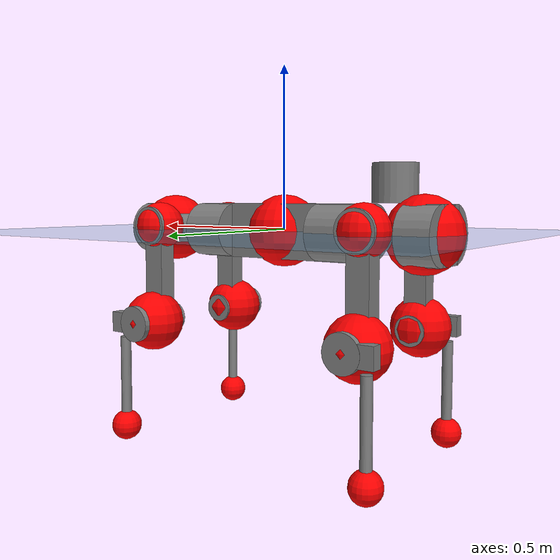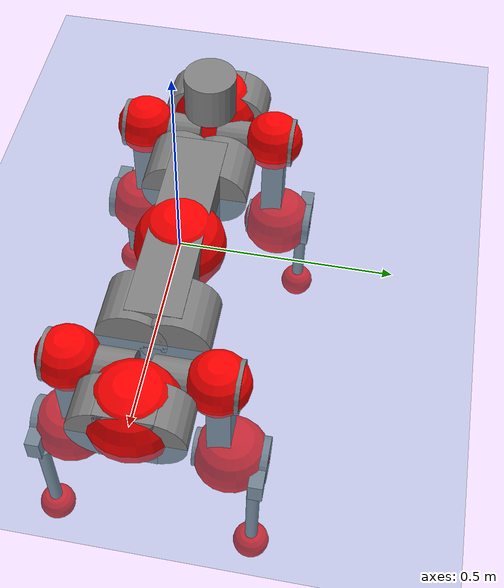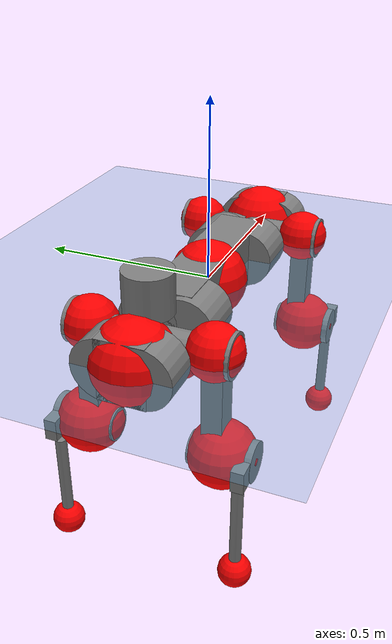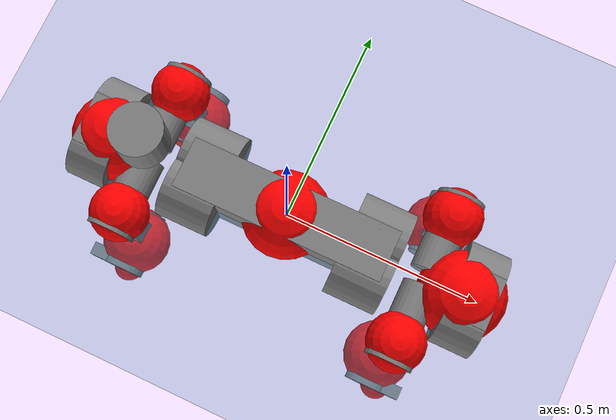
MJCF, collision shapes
<mujoco model="anymal_c">
  <compiler angle="radian" assetdir="assets" balanceinertia="true" inertiafromgeom="false"/>

  <option timestep="0.005" density="1.2" viscosity="2e-05"/>

  <size nkey="1"/>

  <visual>
    <quality shadowsize="8192"/>
    <map shadowclip="0.5"/>
  </visual>

  <default>
    <default class="/">
      <material specular="0" shininess="0.25"/>
      <geom contype="0" conaffinity="0" group="1" solref="-1000 -80"/>
      <site size="0.01 0.005 0.005" group="5"/>
      <general forcelimited="true" forcerange="-80 80" biastype="affine" gainprm="80" biasprm="0 -80 -2"/>
      <default class="anymal_c">
        <joint armature="0.01" damping="0.01" frictionloss="0.1"/>
        <default class="visual">
          <geom type="mesh" group="2"/>
          <default class="visual_zflip"/>
        </default>
        <default class="collision">
          <geom type="cylinder" group="3"/>
          <default class="foot">
            <geom size="0.03 0 0" type="sphere" condim="6" priority="1" friction="0.8 0.02 0.01" solimp="0.015 1 0.03"/>
          </default>
        </default>
      </default>
      <default class="reward_collision_sphere">
        <geom group="5" rgba="1 0 0 1"/>
      </default>
    </default>
  </default>

  <asset>
    <texture type="skybox" colorspace="auto" name="//unnamed_texture_0" builtin="gradient" rgb1="0.95 0.95 0.95" rgb2="0.95 0.95 0.95" width="100" height="600"/>
    <texture type="2d" colorspace="auto" name="texplane" builtin="checker" rgb1="0.345 0.575 0.748" rgb2="0.345 0.575 0.748" markrgb="1 1 1" width="512" height="512"/>
    <texture type="2d" colorspace="linear" name="base" file="base.png"/>
    <texture type="2d" colorspace="linear" name="top_shell" file="top_shell.png"/>
    <texture type="2d" colorspace="linear" name="bottom_shell" file="bottom_shell.png"/>
    <texture type="2d" colorspace="linear" name="remote" file="remote.png"/>
    <texture type="2d" colorspace="linear" name="hatch" file="hatch.png"/>
    <texture type="2d" colorspace="linear" name="handle" file="handle.png"/>
    <texture type="2d" colorspace="linear" name="face" file="face.png"/>
    <texture type="2d" colorspace="linear" name="battery" file="battery.png"/>
    <texture type="2d" colorspace="linear" name="lidar_cage" file="lidar_cage.png"/>
    <texture type="2d" colorspace="linear" name="depth_camera" file="depth_camera.png"/>
    <texture type="2d" colorspace="linear" name="wide_angle_camera" file="wide_angle_camera.png"/>
    <texture type="2d" colorspace="linear" name="lidar" file="lidar.png"/>
    <texture type="2d" colorspace="linear" name="drive" file="drive.png"/>
    <texture type="2d" colorspace="linear" name="hip_l" file="hip_l.png"/>
    <texture type="2d" colorspace="linear" name="shank_l" file="shank_l.png"/>
    <texture type="2d" colorspace="linear" name="foot" file="foot.png"/>
    <texture type="2d" colorspace="linear" name="thigh" file="thigh.png"/>
    <texture type="2d" colorspace="linear" name="shank_r" file="shank_r.png"/>
    <texture type="2d" colorspace="linear" name="hip_r" file="hip_r.png"/>
    <material name="MatPlane" class="/" texture="texplane" texuniform="true" texrepeat="2 2" specular="0.9" shininess="0.5"/>
    <material name="black_plastic" class="/" rgba="0.007 0.007 0.007 1"/>
    <material name="green" class="/" rgba="0.052 0.178 0.033 1"/>
    <material name="red" class="/" rgba="0.178 0.006 0.005 1"/>
    <material name="yellow" class="/" rgba="0.178 0.119 0.006 1"/>
    <material name="lwl" class="/" rgba="0.8 0.8 0.8 1"/>
    <material name="base" class="/" texture="base"/>
    <material name="top_shell" class="/" texture="top_shell"/>
    <material name="bottom_shell" class="/" texture="bottom_shell"/>
    <material name="hip_l" class="/" texture="hip_l"/>
    <material name="thigh" class="/" texture="thigh"/>
    <material name="shank_l" class="/" texture="shank_l"/>
    <material name="foot" class="/" texture="foot"/>
    <material name="hip_r" class="/" texture="hip_r"/>
    <material name="shank" class="/" texture="shank_r"/>
    <material name="hatch" class="/" texture="hatch"/>
    <material name="remote" class="/" texture="remote"/>
    <material name="handle" class="/" texture="handle"/>
    <material name="face" class="/" texture="face"/>
    <material name="depth_camera" class="/" texture="depth_camera"/>
    <material name="wide_angle_camera" class="/" texture="wide_angle_camera"/>
    <material name="battery" class="/" texture="battery"/>
    <material name="lidar_cage" class="/" texture="lidar_cage"/>
    <material name="lidar" class="/" texture="lidar"/>
    <material name="drive" class="/" texture="drive"/>
    <mesh name="base_0" class="/" file="base_0.obj"/>
    <mesh name="base_1" class="/" file="base_1.obj"/>
    <mesh name="base_2" class="/" file="base_2.obj"/>
    <mesh name="base_3" class="/" file="base_3.obj"/>
    <mesh name="base_4" class="/" file="base_4.obj"/>
    <mesh name="base_5" class="/" file="base_5.obj"/>
    <mesh name="top_shell" class="/" file="top_shell.obj"/>
    <mesh name="bottom_shell" class="/" file="bottom_shell.obj"/>
    <mesh name="remote" class="/" file="remote.obj"/>
    <mesh name="handle" class="/" file="handle.obj"/>
    <mesh name="face" class="/" file="face.obj"/>
    <mesh name="wide_angle_camera" class="/" file="wide_angle_camera.obj"/>
    <mesh name="depth_camera" class="/" file="depth_camera.obj"/>
    <mesh name="battery" class="/" file="battery.obj"/>
    <mesh name="lidar_cage" class="/" file="lidar_cage.obj"/>
    <mesh name="lidar" class="/" file="lidar.obj"/>
    <mesh name="drive" class="/" file="drive.obj"/>
    <mesh name="hip_l" class="/" file="hip_l.obj"/>
    <mesh name="thigh" class="/" file="thigh.obj"/>
    <mesh name="shank_l" class="/" file="shank_l.obj"/>
    <mesh name="foot" class="/" file="foot.obj"/>
    <mesh name="hip_r" class="/" file="hip_r.obj"/>
    <mesh name="hatch" class="/" file="hatch.obj"/>
    <mesh name="shank_r" class="/" file="shank_r.obj"/>
  </asset>

  <worldbody>
    <geom name="floor" class="/" size="100 100 0.125" type="plane" group="0" material="MatPlane"/>
    <light name="toplight_shadow" class="/" pos="0 0 5" dir="0.0990148 0.0990148 -0.990148" type="directional" ambient="0.04 0.04 0.04" diffuse="0.55 0.55 0.55" specular="0.12 0.12 0.12"/>
    <light name="toplight_fill" class="/" pos="0 0 5" dir="0.0990148 0.0990148 -0.990148" type="directional" castshadow="false" ambient="0.04 0.04 0.04" diffuse="0.3 0.3 0.3" specular="0.08 0.08 0.08"/>
    <body name="trunk" childclass="anymal_c" pos="-0.00104145 0.000139593 -0.00283599" quat="1 0.000433925 -0.000256762 -0.000140984">
      <inertial pos="-0.000359849 -0.00251686 0.0530038" quat="0.50282 0.499213 0.497043 0.500906" mass="15.4989" diaginertia="0.771614 0.104386 0.294498"/>
      <joint name="//unnamed_joint_0" type="free" armature="0" damping="0" frictionloss="0"/>
      <geom name="//unnamed_geom_1" class="visual" material="green" mesh="base_0"/>
      <geom name="//unnamed_geom_2" class="visual" material="yellow" mesh="base_1"/>
      <geom name="//unnamed_geom_3" class="visual" material="red" mesh="base_2"/>
      <geom name="//unnamed_geom_4" class="visual" material="black_plastic" mesh="base_3"/>
      <geom name="//unnamed_geom_5" class="visual" material="lwl" mesh="base_4"/>
      <geom name="//unnamed_geom_6" class="visual" material="base" mesh="base_5"/>
      <geom name="trunk_1" class="collision" size="0.268295 0.0647609 0.083264" type="box"/>
      <geom name="trunk_2" class="collision" size="0.083264 0.0670738" pos="0.223478 0.0486306 0" quat="0.707107 0 0.707107 0"/>
      <geom name="trunk_3" class="collision" size="0.083264 0.0670738" pos="-0.223478 0.0486306 0" quat="0.707107 0 0.707107 0"/>
      <geom name="trunk_4" class="collision" size="0.083264 0.0670738" pos="0.223478 -0.0486306 0" quat="0.707107 0 0.707107 0"/>
      <geom name="trunk_5" class="collision" size="0.083264 0.0670738" pos="-0.223478 -0.0486306 0" quat="0.707107 0 0.707107 0"/>
      <geom name="//unnamed_geom_12" class="visual" material="top_shell" mesh="top_shell"/>
      <geom name="//unnamed_geom_13" class="visual" material="bottom_shell" mesh="bottom_shell"/>
      <geom name="//unnamed_geom_14" class="visual" material="remote" mesh="remote"/>
      <geom name="//unnamed_geom_15" class="visual" material="handle" mesh="handle"/>
      <geom name="//unnamed_geom_16" class="visual" pos="0.425893 0 0" quat="1 0 0 0" material="face" mesh="face"/>
      <geom name="trunk_6" class="collision" size="0.0508836 0.0647609 0.083264" pos="0.482404 0 0" type="box"/>
      <geom name="//unnamed_geom_18" class="collision" size="0.083264 0.0508836" pos="0.482404 0.0486306 0" quat="0.707107 0 0.707107 0"/>
      <geom name="//unnamed_geom_19" class="collision" size="0.083264 0.0508836" pos="0.482404 -0.0486306 0" quat="0.707107 0 0.707107 0"/>
      <geom name="//unnamed_geom_20" class="visual" pos="0.47434 0 -0.030951" quat="0.965926 0 0.258819 0" material="depth_camera" mesh="depth_camera"/>
      <geom name="//unnamed_geom_21" class="visual" pos="0.5271 0 0.0157673" material="wide_angle_camera" mesh="wide_angle_camera"/>
      <geom name="//unnamed_geom_22" class="visual_zflip" pos="-0.425893 0 0" quat="0 0 0 1" material="face" mesh="face"/>
      <geom name="trunk_7" class="collision" size="0.0508836 0.0647609 0.083264" pos="-0.482404 0 0" quat="0 0 0 1" type="box"/>
      <geom name="//unnamed_geom_24" class="collision" size="0.083264 0.0508836" pos="-0.482404 -0.0486306 0" quat="0 -0.707107 0 0.707107"/>
      <geom name="//unnamed_geom_25" class="collision" size="0.083264 0.0508836" pos="-0.482404 0.0486306 0" quat="0 -0.707107 0 0.707107"/>
      <geom name="//unnamed_geom_26" class="visual" pos="-0.47434 0 -0.030951" quat="0 -0.258819 0 0.965926" material="depth_camera" mesh="depth_camera"/>
      <geom name="//unnamed_geom_27" class="visual_zflip" pos="-0.5271 0 0.0157673" quat="0 0 0 1" material="wide_angle_camera" mesh="wide_angle_camera"/>
      <geom name="//unnamed_geom_28" class="visual" material="battery" mesh="battery"/>
      <geom name="//unnamed_geom_29" class="visual" pos="0 0.0487531 0.0304013" quat="0.683013 -0.183013 0.183013 0.683013" material="depth_camera" mesh="depth_camera"/>
      <geom name="//unnamed_geom_30" class="visual" pos="0 -0.0487531 0.0304013" quat="0.683013 0.183013 0.183013 -0.683013" material="depth_camera" mesh="depth_camera"/>
      <geom name="//unnamed_geom_31" class="visual" pos="-0.374005 0 0.0774145" quat="1 0 0 0" material="lidar_cage" mesh="lidar_cage"/>
      <geom name="trunk_8" class="collision" size="0.0647609 0.0555093" pos="-0.374005 0 0.14061"/>
      <geom name="//unnamed_geom_33" class="visual" pos="-0.374005 -0.000130733 0.149773" quat="0.707107 0 0 -0.707107" material="lidar" mesh="lidar"/>
      <geom name="//unnamed_geom_34" class="visual" pos="0.308143 0.0723786 -6.18477e-09" quat="0.258819 0.965926 0 0" material="drive" mesh="drive"/>
      <geom name="//unnamed_geom_35" class="visual" pos="0.308143 -0.0723786 6.18477e-09" quat="0.258819 -0.965926 0 0" material="drive" mesh="drive"/>
      <geom name="//unnamed_geom_36" class="visual" pos="-0.308143 0.0723786 6.18477e-09" quat="0 0 0.965926 -0.258819" material="drive" mesh="drive"/>
      <geom name="//unnamed_geom_37" class="visual" pos="-0.308143 -0.0723786 -6.18477e-09" quat="0 0 -0.965926 -0.258819" material="drive" mesh="drive"/>
      <geom name="//unnamed_geom_38" class="visual" pos="0.119188 0 0.0768879" quat="1 0 0 0" material="hatch" mesh="hatch"/>
      <geom name="//unnamed_geom_39" class="reward_collision_sphere" size="0.111019"/>
      <geom name="//unnamed_geom_40" class="reward_collision_sphere" size="0.111019" pos="0.462368 0 0"/>
      <geom name="//unnamed_geom_41" class="reward_collision_sphere" size="0.111019" pos="-0.462368 0 0"/>
      <site name="imu" pos="0.248035 0.0103912 0.0608507" size="0.00925156"/>
      <camera name="track" pos="0 -1.38945 0" quat="0.707107 0.707107 0 0" mode="trackcom"/>
      <camera name="ego_camera" pos="0.462368 0 -0.0421303" quat="-0.5 -0.5 0.5 0.5"/>
      <body name="LF_HIP" pos="0.307925 0.0725625 -0.000652337" quat="0.258461 0.966021 -0.000640295 -0.0010427">
        <inertial pos="0.0605836 -0.0126266 -0.00747919" quat="-0.11681 0.705647 -0.137276 0.685254" mass="2.15504" diaginertia="0.00657665 0.000796999 0.00434991"/>
        <joint name="LF_HAA" pos="0 0 0" axis="0.999864 -0.0154556 0.00570234" range="-0.70113 0.537891" armature="0.0101646" damping="0.00305334" frictionloss="0.0948798"/>
        <geom name="//unnamed_geom_42" class="visual" pos="0 -0.000363822 5.97575e-05" quat="0.258819 -0.965926 0 0" material="hip_l" mesh="hip_l"/>
        <geom name="//unnamed_geom_43" class="visual" pos="0.0615464 -0.0703226 -0.0432527" quat="0.183013 -0.683013 0.683013 0.183013" material="drive" mesh="drive"/>
        <geom name="//unnamed_geom_44" class="collision" size="0.0462578 0.0647609" pos="0.0615464 -0.00830875 -0.00727275" quat="-0.353553 -0.612372 0.612372 -0.353553"/>
        <body name="LF_THIGH" pos="0.0620552 -0.0511543 -0.0441711" quat="0.182714 -0.682469 0.68356 0.183297">
          <inertial pos="0.0340598 0.000406835 -0.256505" quat="0.993112 -0.00540599 -0.0790803 0.0862911" mass="2.48844" diaginertia="0.033335 0.00479311 0.00540874"/>
          <joint name="LF_HFE" pos="0 0 0" axis="0.999941 0.00269949 0.0105416" stiffness="0.00167367" range="-3.15503 3.12829" armature="0.00895726" damping="0.003956" frictionloss="0.0813501"/>
          <geom name="//unnamed_geom_45" class="visual" pos="0.00662065 1.04326e-05 0" quat="0.707107 0 0 -0.707107" material="thigh" mesh="thigh"/>
          <geom name="//unnamed_geom_46" class="collision" size="0.0601351 0.0370062" pos="0.0410994 0 0" quat="0.5 0.5 -0.5 -0.5"/>
          <geom name="//unnamed_geom_47" class="collision" size="0.0346933 0.0277547 0.130737" pos="0.0308246 0 -0.14884" quat="0.707107 0 0 -0.707107" type="box"/>
          <geom name="//unnamed_geom_48" class="visual" pos="0.103057 0 -0.300179" quat="1 0 0 0" material="drive" mesh="drive"/>
          <geom name="//unnamed_geom_49" class="collision" size="0.0462578 0.0647609" pos="0.0311328 0 -0.300179" quat="0.707107 0 0.707107 0"/>
          <geom name="//unnamed_geom_50" class="reward_collision_sphere" size="0.0740125" pos="0.0256871 0 0"/>
          <body name="LF_SHANK" pos="0.106396 -0.00316395 -0.30207" quat="0.999999 -0.000341607 0.000201478 0.00133985">
            <inertial pos="0.00568413 -0.0426942 -0.0851402" quat="0.992911 -0.115908 0.000239283 -0.0263417" mass="0.453951" diaginertia="0.0112923 0.00148827 0.00140748"/>
            <joint name="LF_KFE" pos="0 0 0" axis="0.999989 0.00412357 -0.00234208" stiffness="0.000360288" range="-3.19679 3.16869" armature="0.0103587" damping="0" frictionloss="0.105308"/>
            <geom name="//unnamed_geom_51" class="visual" pos="0.00215885 0.0115111 0" quat="0.707107 0 0 -0.707107" material="shank_l" mesh="shank_l"/>
            <geom name="LF_kfe_act" class="collision" size="0.0555093 0.0185031" pos="0.0205497 0 0" quat="0.5 0.5 -0.5 -0.5"/>
            <geom name="//unnamed_geom_53" class="collision" size="0.0531955 0.031224 0.017578" pos="0.0205497 -0.0399459 0" quat="0.5 0.5 -0.5 -0.5" type="box"/>
            <geom name="//unnamed_geom_54" class="visual" pos="0.0134082 -0.0573914 -0.35597" quat="0.382683 0 0 -0.92388" material="foot" mesh="foot"/>
            <geom name="LF_calf" class="collision" size="0.0161902 0.13068" pos="0.0134087 -0.0611009 -0.177985" quat="0.707107 0 0 -0.707107"/>
            <geom name="LF_foot" class="foot" size="0.0270537" pos="0.0134087 -0.0611009 -0.332271" quat="0.707107 0 0 -0.707107"/>
            <geom name="//unnamed_geom_57" class="reward_collision_sphere" size="0.0925156" pos="-0.0513743 0 0"/>
            <geom name="//unnamed_geom_58" class="reward_collision_sphere" size="0.0462578" pos="0.0134087 -0.0611009 -0.332271"/>
            <site name="LF_foot" class="foot" pos="0.0134087 -0.0611009 -0.332271" quat="0.707107 0 0 -0.707107" size="0.00925156"/>
          </body>
        </body>
      </body>
      <body name="RF_HIP" pos="0.306052 -0.0730697 -0.00152117" quat="0.259271 -0.965805 2.40421e-05 -2.9086e-06">
        <inertial pos="0.0607886 0.0123112 -0.0099083" quat="0.136528 0.678991 0.129227 0.70967" mass="2.27018" diaginertia="0.00676599 0.000850421 0.00439477"/>
        <joint name="RF_HAA" pos="0 0 0" axis="0.999956 0.00537932 -0.0076625" range="-0.53693 0.708024" armature="0.00817389" damping="0.00820808" frictionloss="0.0815134"/>
        <geom name="//unnamed_geom_59" class="visual" pos="0 0.000363819 5.97573e-05" quat="0.258819 0.965926 0 0" material="hip_r" mesh="hip_r"/>
        <geom name="//unnamed_geom_60" class="visual" pos="0.0615464 0.0703226 -0.0432527" quat="0.183013 0.683013 0.683013 -0.183013" material="drive" mesh="drive"/>
        <geom name="//unnamed_geom_61" class="collision" size="0.0462578 0.0647609" pos="0.0615464 0.00830875 -0.00727275" quat="-0.353553 0.612372 0.612372 0.353553"/>
        <body name="RF_THIGH" pos="0.0600718 0.0525305 -0.0467742" quat="0.182961 0.682969 0.683071 -0.183009">
          <inertial pos="0.0320582 -0.000870457 -0.257374" quat="0.993517 -0.0125029 -0.0812572 0.0785158" mass="2.28805" diaginertia="0.0329946 0.00483077 0.00537606"/>
          <joint name="RF_HFE" pos="0 0 0" axis="0.999957 -0.00770142 -0.00512754" stiffness="0.00593413" range="-3.11068 3.19748" armature="0.00939368" damping="0" frictionloss="0.0970484"/>
          <geom name="//unnamed_geom_62" class="visual" pos="0.00662065 1.04326e-05 0" quat="0.707107 0 0 -0.707107" material="thigh" mesh="thigh"/>
          <geom name="//unnamed_geom_63" class="collision" size="0.0601351 0.0370062" pos="0.0410994 0 0" quat="0.5 0.5 0.5 0.5"/>
          <geom name="//unnamed_geom_64" class="collision" size="0.0346933 0.0277547 0.130737" pos="0.0308246 0 -0.14884" quat="0.707107 0 0 0.707107" type="box"/>
          <geom name="//unnamed_geom_65" class="visual" pos="0.103057 0 -0.300179" quat="1 0 0 0" material="drive" mesh="drive"/>
          <geom name="//unnamed_geom_66" class="collision" size="0.0462578 0.0647609" pos="0.0311328 0 -0.300179" quat="0.707107 0 0.707107 0"/>
          <geom name="//unnamed_geom_67" class="reward_collision_sphere" size="0.0740125" pos="0.0256871 0 0"/>
          <body name="RF_SHANK" pos="0.104818 -0.00172915 -0.298168" quat="1 -0.000492864 -1.07395e-06 0.000146957">
            <inertial pos="0.00535017 0.04332 -0.0826535" quat="0.992427 0.117758 -0.011815 0.0329058" mass="0.472553" diaginertia="0.0114417 0.00144986 0.00144299"/>
            <joint name="RF_KFE" pos="0 0 0" axis="0.999962 -0.0064344 -0.00581457" range="-3.18546 3.19101" armature="0.00881215" damping="0.00315274" frictionloss="0.0841239"/>
            <geom name="//unnamed_geom_68" class="visual" pos="0.00215884 -0.0115111 0" quat="0.707107 0 0 0.707107" material="shank" mesh="shank_r"/>
            <geom name="RF_kfe_act" class="collision" size="0.0555093 0.0185031" pos="0.0205497 0 0" quat="0.5 0.5 0.5 0.5"/>
            <geom name="//unnamed_geom_70" class="collision" size="0.0531955 0.031224 0.017578" pos="0.0205497 0.0399459 0" quat="0.5 0.5 0.5 0.5" type="box"/>
            <geom name="//unnamed_geom_71" class="visual" pos="0.0134092 0.0573914 -0.35597" quat="0.382683 0 0 0.92388" material="foot" mesh="foot"/>
            <geom name="RF_calf" class="collision" size="0.0161902 0.13068" pos="0.0134087 0.0611009 -0.177985" quat="0.707107 0 0 0.707107"/>
            <geom name="RF_foot" class="foot" size="0.0272798" pos="0.0134087 0.0611009 -0.332271" quat="0.707107 0 0 0.707107"/>
            <geom name="//unnamed_geom_74" class="reward_collision_sphere" size="0.0925156" pos="-0.0513743 0 0"/>
            <geom name="//unnamed_geom_75" class="reward_collision_sphere" size="0.0462578" pos="0.0134087 0.0611009 -0.332271"/>
            <site name="RF_foot" class="foot" pos="0.0134087 0.0611009 -0.332271" quat="0.707107 0 0 0.707107" size="0.00925156"/>
          </body>
        </body>
      </body>
      <body name="LH_HIP" pos="-0.309555 0.0743548 -0.000339956" quat="0.000223164 -0.000117819 0.965919 -0.258844">
        <inertial pos="0.0604346 0.0126534 -0.00955781" quat="0.139835 0.675073 0.116795 0.7149" mass="2.20596" diaginertia="0.00639304 0.000787525 0.00400284"/>
        <joint name="LH_HAA" pos="0 0 0" axis="0.999964 -0.00663011 -0.00526815" range="-0.466487 0.702816" armature="0.0080502" damping="0" frictionloss="0.0949018"/>
        <geom name="//unnamed_geom_76" class="visual" pos="0 0.000363819 5.97573e-05" quat="-0.258819 -0.965926 0 0" material="hip_r" mesh="hip_r"/>
        <geom name="//unnamed_geom_77" class="visual" pos="0.0615464 0.0703226 -0.0432527" quat="0.183013 0.683013 0.683013 -0.183013" material="drive" mesh="drive"/>
        <geom name="//unnamed_geom_78" class="collision" size="0.0462578 0.0647609" pos="0.0615464 0.00830875 -0.00727275" quat="-0.353553 0.612372 0.612372 0.353553"/>
        <body name="LH_THIGH" pos="0.0580946 0.0491269 -0.0450027" quat="0.183195 0.682914 0.683043 -0.183085">
          <inertial pos="0.0318797 0.00260074 -0.257744" quat="0.992812 -0.000291608 -0.0794597 0.0895006" mass="2.42984" diaginertia="0.0347918 0.0046787 0.00548381"/>
          <joint name="LH_HFE" pos="0 0 0" axis="0.999939 -0.0103903 -0.00376898" stiffness="0.00911316" range="-3.13475 3.16066" armature="0.00814195" damping="0" frictionloss="0.098591"/>
          <geom name="//unnamed_geom_79" class="visual" pos="0.00662065 1.04326e-05 0" quat="0.707107 0 0 -0.707107" material="thigh" mesh="thigh"/>
          <geom name="//unnamed_geom_80" class="collision" size="0.0601351 0.0370062" pos="0.0410994 0 0" quat="0.5 0.5 -0.5 -0.5"/>
          <geom name="//unnamed_geom_81" class="collision" size="0.0346933 0.0277547 0.130737" pos="0.0308246 0 -0.14884" quat="0.707107 0 0 -0.707107" type="box"/>
          <geom name="//unnamed_geom_82" class="visual" pos="0.103057 0 -0.300179" quat="1 0 0 0" material="drive" mesh="drive"/>
          <geom name="//unnamed_geom_83" class="collision" size="0.0462578 0.0647609" pos="0.0311328 0 -0.300179" quat="0.707107 0 0.707107 0"/>
          <geom name="//unnamed_geom_84" class="reward_collision_sphere" size="0.0740125" pos="0.0256871 0 0"/>
          <body name="LH_SHANK" pos="0.0998953 -0.000792064 -0.302349" quat="0.999999 0.000317771 0.00053502 -0.000887403">
            <inertial pos="0.00562166 0.0423474 -0.0851393" quat="0.99269 0.117512 0.00363983 0.0272995" mass="0.468754" diaginertia="0.0115833 0.00148532 0.00143297"/>
            <joint name="LH_KFE" pos="0 0 0" axis="0.999784 0.0203149 -0.00433461" range="-3.16146 3.14474" armature="0.00807571" damping="0.00848294" frictionloss="0.105499"/>
            <geom name="//unnamed_geom_85" class="visual" pos="0.00215884 -0.0115111 0" quat="-0.707107 0 0 -0.707107" material="shank" mesh="shank_r"/>
            <geom name="LH_kfe_act" class="collision" size="0.0555093 0.0185031" pos="0.0205497 0 0" quat="0.5 0.5 -0.5 -0.5"/>
            <geom name="//unnamed_geom_87" class="collision" size="0.0531955 0.031224 0.017578" pos="0.0205497 0.0399459 0" quat="0.5 0.5 -0.5 -0.5" type="box"/>
            <geom name="//unnamed_geom_88" class="visual" pos="0.0134092 0.0573914 -0.35597" quat="-0.382683 0 0 -0.92388" material="foot" mesh="foot"/>
            <geom name="LH_calf" class="collision" size="0.0161902 0.13068" pos="0.0134087 0.0611009 -0.177985" quat="0.707107 0 0 -0.707107"/>
            <geom name="LH_foot" class="foot" size="0.0306884" pos="0.0134087 0.0611009 -0.332271" quat="0.707107 0 0 -0.707107"/>
            <geom name="//unnamed_geom_91" class="reward_collision_sphere" size="0.0925156" pos="-0.0513743 0 0"/>
            <geom name="//unnamed_geom_92" class="reward_collision_sphere" size="0.0462578" pos="0.0134087 0.0611009 -0.332271"/>
            <site name="LH_foot" class="foot" pos="0.0134087 0.0611009 -0.332271" quat="0.707107 0 0 -0.707107" size="0.00925156"/>
          </body>
        </body>
      </body>
      <body name="RH_HIP" pos="-0.308351 -0.07499 -0.00101548" quat="0.000596945 0.00101153 -0.966047 -0.258363">
        <inertial pos="0.0560703 -0.0110382 -0.0064234" quat="-0.129452 0.71004 -0.137028 0.678461" mass="2.14281" diaginertia="0.00655301 0.000770725 0.00404717"/>
        <joint name="RH_HAA" pos="0 0 0" axis="0.999999 0.00125112 0.000223675" range="-0.775177 0.525248" armature="0.0090281" damping="0" frictionloss="0.0941481"/>
        <geom name="//unnamed_geom_93" class="visual" pos="0 -0.000363822 5.97575e-05" quat="-0.258819 0.965926 0 0" material="hip_l" mesh="hip_l"/>
        <geom name="//unnamed_geom_94" class="visual" pos="0.0615464 -0.0703226 -0.0432527" quat="-0.183013 0.683013 -0.683013 -0.183013" material="drive" mesh="drive"/>
        <geom name="//unnamed_geom_95" class="collision" size="0.0462578 0.0647609" pos="0.0615464 -0.00830875 -0.00727275" quat="0.353553 0.612372 -0.612372 0.353553"/>
        <body name="RH_THIGH" pos="0.0603882 -0.0525949 -0.0431183" quat="-0.183024 0.683002 -0.683019 -0.183019">
          <inertial pos="0.034883 -0.000147345 -0.25929" quat="0.993216 -0.00599678 -0.0806817 0.0835304" mass="2.34257" diaginertia="0.0330224 0.00474294 0.00533156"/>
          <joint name="RH_HFE" pos="0 0 0" axis="0.999952 -0.00847188 -0.004886" stiffness="0.000128365" range="-3.15645 3.15542" armature="0.00844506" damping="0.000897224" frictionloss="0.0946371"/>
          <geom name="//unnamed_geom_96" class="visual" pos="0.00662065 1.04326e-05 0" quat="0.707107 0 0 -0.707107" material="thigh" mesh="thigh"/>
          <geom name="//unnamed_geom_97" class="collision" size="0.0601351 0.0370062" pos="0.0410994 0 0" quat="0.5 0.5 0.5 0.5"/>
          <geom name="//unnamed_geom_98" class="collision" size="0.0346933 0.0277547 0.130737" pos="0.0308246 0 -0.14884" quat="0.707107 0 0 0.707107" type="box"/>
          <geom name="//unnamed_geom_99" class="visual" pos="0.103057 0 -0.300179" quat="1 0 0 0" material="drive" mesh="drive"/>
          <geom name="//unnamed_geom_100" class="collision" size="0.0462578 0.0647609" pos="0.0311328 0 -0.300179" quat="0.707107 0 0.707107 0"/>
          <geom name="//unnamed_geom_101" class="reward_collision_sphere" size="0.0740125" pos="0.0256871 0 0"/>
          <body name="RH_SHANK" pos="0.100954 0.000908221 -0.298555" quat="0.999999 0.000657922 0.000767931 0.000329772">
            <inertial pos="0.00419565 -0.0423553 -0.0857613" quat="0.992912 -0.116659 0.0107729 -0.0200169" mass="0.454287" diaginertia="0.0111242 0.00152573 0.00142489"/>
            <joint name="RH_KFE" pos="0 0 0" axis="0.999977 -0.0013726 0.00663033" stiffness="0.00990619" range="-3.11097 3.11566" armature="0.00844111" damping="0.0109297" frictionloss="0.0925123"/>
            <geom name="//unnamed_geom_102" class="visual" pos="0.00215885 0.0115111 0" quat="0.707107 0 0 -0.707107" material="shank_l" mesh="shank_l"/>
            <geom name="RH_kfe_act" class="collision" size="0.0555093 0.0185031" pos="0.0205497 0 0" quat="0.5 0.5 0.5 0.5"/>
            <geom name="//unnamed_geom_104" class="collision" size="0.0531955 0.031224 0.017578" pos="0.0205497 -0.0399459 0" quat="0.5 0.5 0.5 0.5" type="box"/>
            <geom name="//unnamed_geom_105" class="visual" pos="0.0134082 -0.0573914 -0.35597" quat="0.382683 0 0 -0.92388" material="foot" mesh="foot"/>
            <geom name="RH_calf" class="collision" size="0.0161902 0.13068" pos="0.0134087 -0.0611009 -0.177985" quat="0.707107 0 0 0.707107"/>
            <geom name="RH_foot" class="foot" size="0.0232466" pos="0.0134087 -0.0611009 -0.332271" quat="0.707107 0 0 0.707107"/>
            <geom name="//unnamed_geom_108" class="reward_collision_sphere" size="0.0925156" pos="-0.0513743 0 0"/>
            <geom name="//unnamed_geom_109" class="reward_collision_sphere" size="0.0462578" pos="0.0134087 -0.0611009 -0.332271"/>
            <site name="RH_foot" class="foot" pos="0.0134087 -0.0611009 -0.332271" quat="0.707107 0 0 0.707107" size="0.00925156"/>
          </body>
        </body>
      </body>
    </body>
  </worldbody>

  <contact>
    <pair class="/" geom1="floor" geom2="LF_foot" name="//unnamed_contact_0"/>
    <pair class="/" geom1="floor" geom2="RF_foot" name="//unnamed_contact_1"/>
    <pair class="/" geom1="floor" geom2="LH_foot" name="//unnamed_contact_2"/>
    <pair class="/" geom1="floor" geom2="RH_foot" name="//unnamed_contact_3"/>
  </contact>

  <actuator>
    <general name="LF_HAA" class="/" joint="LF_HAA" forcerange="-77.2849 77.2849" gainprm="72.928" biasprm="0 -72.928 -1.7417"/>
    <general name="LF_HFE" class="/" joint="LF_HFE" forcerange="-67.0388 67.0388" gainprm="72.928" biasprm="0 -72.928 -1.7417"/>
    <general name="LF_KFE" class="/" joint="LF_KFE" forcerange="-74.4609 74.4609" gainprm="72.928" biasprm="0 -72.928 -1.7417"/>
    <general name="RF_HAA" class="/" joint="RF_HAA" forcerange="-67.4096 67.4096" gainprm="72.928" biasprm="0 -72.928 -1.7417"/>
    <general name="RF_HFE" class="/" joint="RF_HFE" forcerange="-82.6026 82.6026" gainprm="72.928" biasprm="0 -72.928 -1.7417"/>
    <general name="RF_KFE" class="/" joint="RF_KFE" forcerange="-67.2897 67.2897" gainprm="72.928" biasprm="0 -72.928 -1.7417"/>
    <general name="LH_HAA" class="/" joint="LH_HAA" forcerange="-74.771 74.771" gainprm="72.928" biasprm="0 -72.928 -1.7417"/>
    <general name="LH_HFE" class="/" joint="LH_HFE" forcerange="-67.4663 67.4663" gainprm="72.928" biasprm="0 -72.928 -1.7417"/>
    <general name="LH_KFE" class="/" joint="LH_KFE" forcerange="-75.9705 75.9705" gainprm="72.928" biasprm="0 -72.928 -1.7417"/>
    <general name="RH_HAA" class="/" joint="RH_HAA" forcerange="-72.3286 72.3286" gainprm="72.928" biasprm="0 -72.928 -1.7417"/>
    <general name="RH_HFE" class="/" joint="RH_HFE" forcerange="-69.4425 69.4425" gainprm="72.928" biasprm="0 -72.928 -1.7417"/>
    <general name="RH_KFE" class="/" joint="RH_KFE" forcerange="-81.7473 81.7473" gainprm="72.928" biasprm="0 -72.928 -1.7417"/>
  </actuator>

  <sensor>
    <gyro site="imu" name="imu_angular_velocity"/>
    <velocimeter site="imu" name="imu_linear_velocity"/>
    <framelinvel objtype="site" objname="LF_foot" name="LF_foot_global_linear_velocity"/>
    <framelinvel objtype="site" objname="RF_foot" name="RF_foot_global_linear_velocity"/>
    <framelinvel objtype="site" objname="LH_foot" name="LH_foot_global_linear_velocity"/>
    <framelinvel objtype="site" objname="RH_foot" name="RH_foot_global_linear_velocity"/>
  </sensor>

  <keyframe>
    <key name="home" qpos="0 0 0.55 1 0 0 0 0 0.4 -0.8 0 -0.4 0.8 0 -0.4 0.8 0 0.4 -0.8"/>
  </keyframe>
</mujoco>
